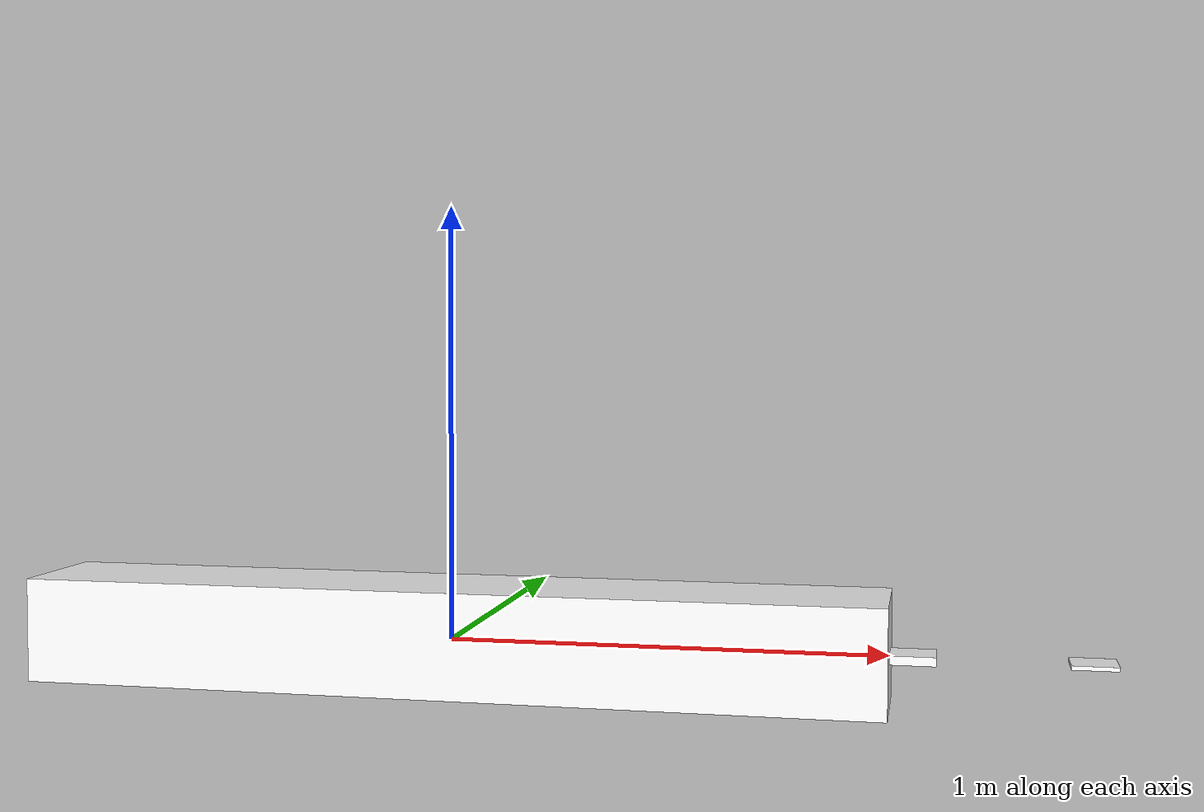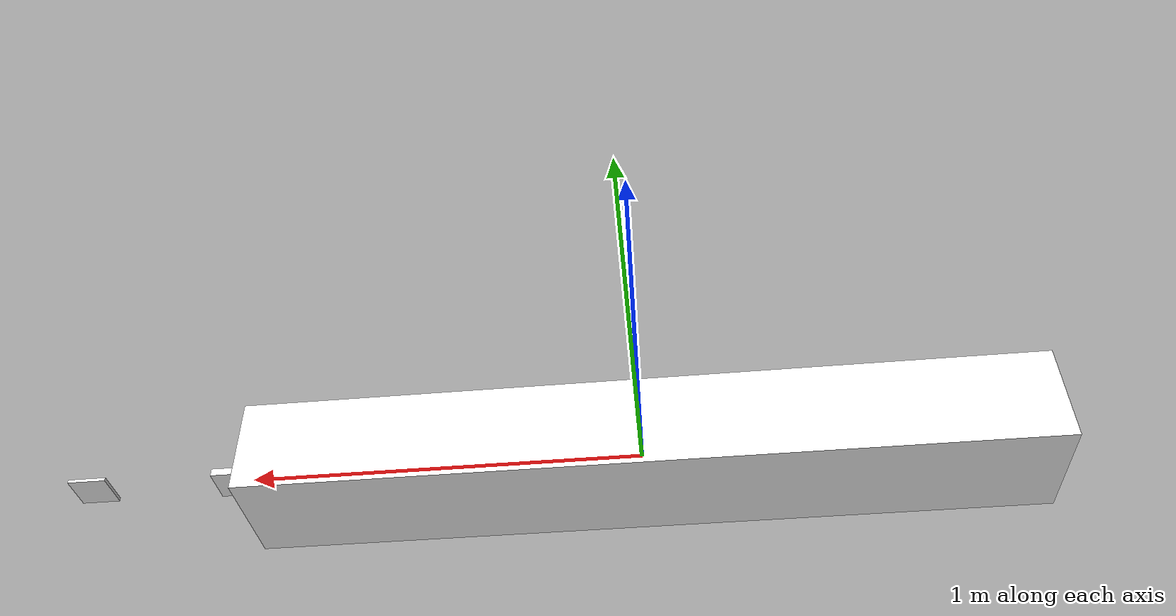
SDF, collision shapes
<?xml version="1.0"?>
<!--
  Development of this module has been funded by the Monterey Bay Aquarium
  Research Institute (MBARI) and the David and Lucile Packard Foundation
-->
<sdf version="1.9">
  <model name="equipped_tethys">
    <enable_wind>true</enable_wind>

    <include merge="true">
      <!-- align with NED (face North) -->
      <pose degrees="true">0 0 0 0 0 0</pose>
      <uri>tethys</uri>

      <!-- Joint controllers -->
      <plugin
        filename="gz-sim-joint-position-controller-system"
        name="gz::sim::systems::JointPositionController">
        <joint_name>horizontal_fins_joint</joint_name>
        <topic>horizontal_pos</topic>
        <p_gain>0.1</p_gain>
      </plugin>
      <plugin
        filename="gz-sim-joint-position-controller-system"
        name="gz::sim::systems::JointPositionController">
        <joint_name>vertical_fins_joint</joint_name>
        <p_gain>0.1</p_gain>
      </plugin>

<plugin
        filename="gz-sim-thruster-system"
        name="gz::sim::systems::Thruster">
        <namespace>tethys</namespace>
        <joint_name>propeller_joint</joint_name>
        <!-- Be sure to update TethysComm when updating these numbers -->
        <thrust_coefficient>0.004312328425753156</thrust_coefficient>
        <fluid_density>1000</fluid_density>
        <propeller_diameter>0.2</propeller_diameter>
        <velocity_control>true</velocity_control>
        <use_angvel_cmd>true</use_angvel_cmd>
        <topic>propeller_cml</topic>
        <alpha_1> 1 </alpha_1>
        <alpha_2> 0.1 </alpha_2>
      </plugin>

      <!-- Lift and drag -->

      <plugin
        filename="gz-sim-hydrodynamics-system"
        name="gz::sim::systems::Hydrodynamics">
        <link_name>base_link</link_name>
        <xDotU>-4.876161</xDotU>
        <yDotV>-126.324739</yDotV>
        <zDotW>-126.324739</zDotW>
        <kDotP>0</kDotP>
        <mDotQ>-33.46</mDotQ>
        <nDotR>-33.46</nDotR>
        <xUabsU>-6.2282</xUabsU>
        <xU>0</xU>
        <yVabsV>-601.27</yVabsV>
        <yV>0</yV>
        <zWabsW>-601.27</zWabsW>
        <zW>0</zW>
        <kPabsP>-0.1916</kPabsP>
        <kP>0</kP>
        <mQabsQ>-632.698957</mQabsQ>
        <mQ>0</mQ>
        <nRabsR>-632.698957</nRabsR>
        <nR>0</nR>
      </plugin>
      <plugin
        filename="gz-sim-buoyancy-engine-system"
        name="gz::sim::systems::BuoyancyEngine">
        <link_name>buoyancy_engine</link_name>
        <namespace>tethys</namespace>
        <fluid_density>1000</fluid_density>
        <!-- 80 cc == 0.00008 m^3 -->
        <min_volume>0.000080</min_volume>
        <!-- 500 cc == 0.0005 m^3 -->
        <neutral_volume>0.0005</neutral_volume>
        <default_volume>0.0005</default_volume>
        <!-- 955 cc == 0.000955 m^3 -->
        <max_volume>0.000955</max_volume>
        <max_inflation_rate>0.000003</max_inflation_rate>
      </plugin>

  <plugin filename="gz-sim-odometry-publisher-system"
        name="gz::sim::systems::OdometryPublisher">
        <dimensions>3 </dimensions>
        <odom_publish_frequency>10 </odom_publish_frequency>
     </plugin>

    </include>
  </model>
</sdf>

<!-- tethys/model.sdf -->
<sdf version="1.6">
  <model name="tethys">
    <enable_wind>true</enable_wind>

    <link name="base_link">
      <inertial>

        <pose>0.0 0 0 0 0 0 </pose>

        <mass>146.471</mass>

        <inertia>
          <ixx>3.000000</ixx>
          <ixy>0</ixy>
          <ixz>0</ixz>
          <iyy>41.980233</iyy>
          <iyz>0</iyz>
          <izz>41.980233</izz>

        </inertia>
      </inertial>

      <collision name="main_body_buoyancy"><pose>0 0 0.007 0 0 0 </pose><geometry><box><size>2.0 0.3 0.24411833333333333 </size></box></geometry></collision>

      <visual name="visual">
        <geometry>
          <mesh>
            <uri>meshes/tethys.dae</uri>
            <submesh>
              <name>Body</name>
              <center>false</center>
            </submesh>
          </mesh>
        </geometry>
        <material>
          <diffuse>1.0 1.0 1.0 1.0</diffuse>
          <specular>1.0 1.0 1.0 1.0</specular>
          <pbr>
            <metal>
              <albedo_map>materials/textures/Tethys_Albedo.png</albedo_map>
              <normal_map>materials/textures/Tethys_Normal.png</normal_map>
              <metalness_map>materials/textures/Tethys_Metalness.png</metalness_map>
              <roughness_map>materials/textures/Tethys_Roughness.png</roughness_map>
            </metal>
          </pbr>
          <script>
            <uri>materials/scripts/</uri>
            <uri>materials/textures/</uri>
            <name>tethys/Tethys_Diffuse</name>
          </script>
        </material>
      </visual>
    </link>

    <link name="horizontal_fins">
     <pose>1.05 0 0 0 0 0</pose>
      <inertial>
        <mass>0.2</mass>
        <inertia>
          <ixx>0.0007924568755</ixx>
          <ixy>-0.0000000002674</ixy>
          <ixz>0.0003978158176</ixz>
          <iyy>0.0010546736475</iyy>
          <iyz>-0.0000000006729</iyz>
          <izz>0.0002633558262</izz>
        </inertia>
      </inertial>

      <collision name="vertical_fin_buoyancy"><geometry><box><size>0.1 0.1 0.019999999999999997 </size></box></geometry></collision>
      <visual name="visual">
        <pose>-1.05 0 0 0 0 0</pose>
        <geometry>
          <mesh>
            <uri>meshes/tethys.dae</uri>
            <submesh>
              <name>Fins_Horizontal</name>
              <center>false</center>
            </submesh>
          </mesh>
        </geometry>
        <material>
          <diffuse>1.0 1.0 1.0</diffuse>
          <specular>1.0 1.0 1.0</specular>
          <pbr>
            <metal>
              <albedo_map>materials/textures/Tethys_Albedo.png</albedo_map>
              <normal_map>materials/textures/Tethys_Normal.png</normal_map>
              <metalness_map>materials/textures/Tethys_Metalness.png</metalness_map>
              <roughness_map>materials/textures/Tethys_Roughness.png</roughness_map>
            </metal>
          </pbr>
          <script>
            <uri>materials/scripts/</uri>
            <uri>materials/textures/</uri>
            <name>tethys/Tethys_Diffuse</name>
          </script>
        </material>
      </visual>
    </link>

    <link name="vertical_fins">
      <pose>1.05 0 0 0 0 0</pose>
      <inertial>
        <mass>0.2</mass>
        <inertia>
          <ixx>0.0007924568755</ixx>
          <ixy>-0.0000000002674</ixy>
          <ixz>0.0003978158176</ixz>
          <iyy>0.0010546736475</iyy>
          <iyz>-0.0000000006729</iyz>
          <izz>0.0002633558262</izz>
        </inertia>
      </inertial>

      <collision name="vertical_fin_buoyancy"><geometry><box><size>0.1 0.1 0.019999999999999997 </size></box></geometry></collision>

      <visual name="visual">
        <pose>-1.05 0 0 0 0 0</pose>
        <geometry>
          <mesh>
            <uri>meshes/tethys.dae</uri>
            <submesh>
              <name>Fins_vertical</name>
              <center>false</center>
            </submesh>
          </mesh>
        </geometry>
        <material>
          <diffuse>1.0 1.0 1.0</diffuse>
          <specular>1.0 1.0 1.0</specular>
          <pbr>
            <metal>
              <albedo_map>materials/textures/Tethys_Albedo.png</albedo_map>
              <normal_map>materials/textures/Tethys_Normal.png</normal_map>
              <metalness_map>materials/textures/Tethys_Metalness.png</metalness_map>
              <roughness_map>materials/textures/Tethys_Roughness.png</roughness_map>
            </metal>
          </pbr>
          <script>
            <uri>materials/scripts/</uri>
            <uri>materials/textures/</uri>
            <name>tethys/Tethys_Diffuse</name>
          </script>
        </material>
      </visual>
    </link>

    <link name="propeller">
      <pose>1.43162 0 0 0 0 0</pose>
      <inertial>
        <pose>0 0 0 1.570796 0 0</pose>
        <mass>0.09</mass>
        <inertia>
          <ixx>0.000143971303</ixx>
          <ixy>0.000000000008</ixy>
          <ixz>-0.000000000224</ixz>
          <iyy>0.000140915448</iyy>
          <iyz>-0.000025236433</iyz>
          <izz>0.000033571862</izz>
        </inertia>
      </inertial>

      <collision name="propeller_buoyancy"><geometry><box><size>0.1 0.1 0.008999999999999998 </size></box></geometry></collision>

      <visual name="visual">
        <pose>-1.43162 0 0 0 0 0</pose>
        <geometry>
          <mesh>
            <uri>meshes/tethys.dae</uri>
            <submesh>
              <name>Prop</name>
              <center>false</center>
            </submesh>
          </mesh>
        </geometry>
        <material>
          <diffuse>1.0 1.0 1.0</diffuse>
          <specular>1.0 1.0 1.0</specular>
          <pbr>
            <metal>
              <albedo_map>materials/textures/Tethys_Albedo.png</albedo_map>
              <normal_map>materials/textures/Tethys_Normal.png</normal_map>
              <metalness_map>materials/textures/Tethys_Metalness.png</metalness_map>
              <roughness_map>materials/textures/Tethys_Roughness.png</roughness_map>
            </metal>
          </pbr>
          <script>
            <uri>materials/scripts/</uri>
            <uri>materials/textures/</uri>
            <name>tethys/Tethys_Diffuse</name>
          </script>
        </material>
      </visual>
    </link>

    <link name="buoyancy_engine">

      <pose>0.137 0 0 0 0 0</pose>

      <inertial>

        <mass>0.3</mass>
        <inertia>
          <ixx>0.000143971303</ixx>
          <ixy>0.000000000008</ixy>
          <ixz>-0.000000000224</ixz>
          <iyy>0.000140915448</iyy>
          <iyz>-0.000025236433</iyz>
          <izz>0.000033571862</izz>
        </inertia>
      </inertial>
      <collision name="buoyancy_engine"><geometry><box><size>0.1 0.1 0.029999999999999992 </size></box></geometry></collision>
    </link>

    <link name="acoustic_transponder">

      <pose degrees="true">0 0 0 0 0 180</pose>
      <inertial>
        <pose>0 0 0 0 0 0</pose>
        <mass>0.01</mass>
        <inertia>
          <ixx>0.000143971303</ixx>
          <ixy>0.000000000008</ixy>
          <ixz>-0.000000000224</ixz>
          <iyy>0.000140915448</iyy>
          <iyz>-0.000025236433</iyz>
          <izz>0.000033571862</izz>
        </inertia>
      </inertial>
      <collision name="acoustic_transponder_col"><geometry><box><size>0.1 0.1 0.0009999999999999998 </size></box></geometry></collision>
    </link>

    <joint name="acoustic_transponder_joint" type="fixed">
      <pose>0 0 0 0 0 0</pose>
      <parent>base_link</parent>
      <child>acoustic_transponder</child>
    </joint>
    <joint name="buoyancy_engine_joint" type="fixed">
      <pose>0 0 0 0 0 0</pose>
      <parent>base_link</parent>
      <child>buoyancy_engine</child>
    </joint>
    <joint name="horizontal_fins_joint" type="revolute">
      <pose>0 0 0 0 0 0</pose>
      <parent>base_link</parent>
      <child>horizontal_fins</child>
      <axis>
        <xyz>0 1 0</xyz>
        <limit>
          <lower>-0.261799</lower>
          <upper>0.261799</upper>
          <effort>-1</effort>
          <velocity>-1</velocity>
        </limit>
      </axis>
    </joint>

    <joint name="vertical_fins_joint" type="revolute">
      <pose degrees="true">0 0 0 180 0 0</pose>
      <parent>base_link</parent>
      <child>vertical_fins</child>
      <axis>
        <xyz>0 0 1</xyz>
        <limit>
          <lower>-0.261799</lower>
          <upper>0.261799</upper>
          <effort>-1</effort>
          <velocity>-1</velocity>
        </limit>
      </axis>
    </joint>

    <joint name="propeller_joint" type="revolute">
      <pose degrees="true">0 0 0 0 180 0</pose>
      <parent>base_link</parent>
      <child>propeller</child>
      <axis>
        <xyz>1 0 0</xyz>
        <limit>
          <lower>-1e+12</lower>
          <upper>1e+12</upper>
          <effort>1e6</effort>
          <velocity>-1</velocity>
        </limit>
      </axis>
    </joint>

  </model>
</sdf>
